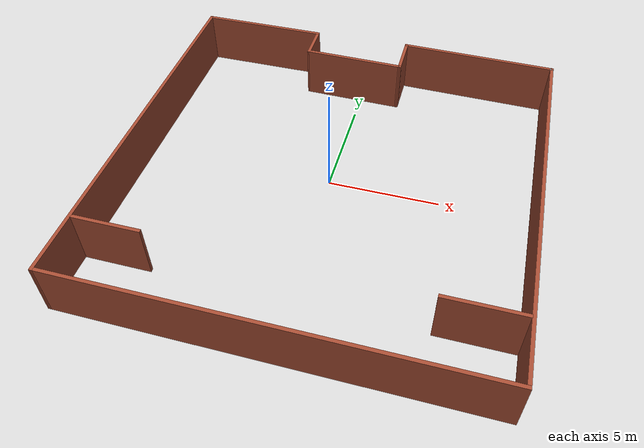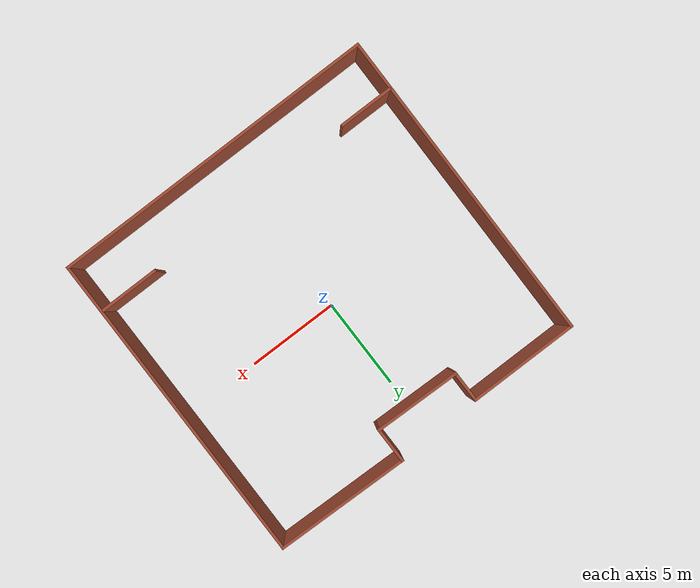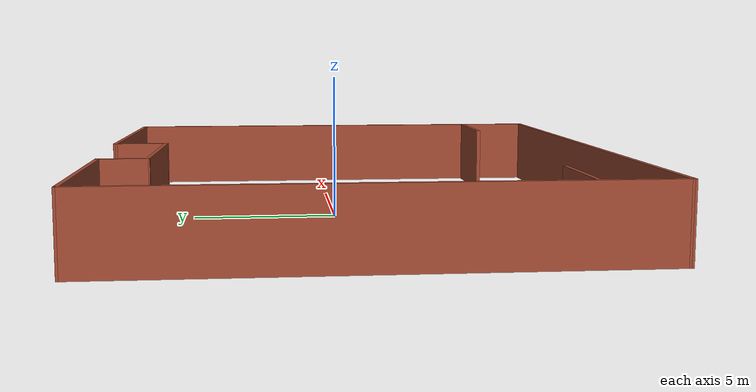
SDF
<?xml version='1.0'?>
<sdf version='1.6'>
  <model name='map_139'>
    <pose frame=''>0.179464 -0.623901 0 0 -0 0</pose>
    <link name='Wall_10'>
      <collision name='Wall_10_Collision'>
        <geometry>
          <box>
            <size>4.75 0.15 2.5</size>
          </box>
        </geometry>
        <pose frame=''>0 0 1.25 0 -0 0</pose>
      </collision>
      <visual name='Wall_10_Visual'>
        <pose frame=''>0 0 1.25 0 -0 0</pose>
        <geometry>
          <box>
            <size>4.75 0.15 2.5</size>
          </box>
        </geometry>
        <material>
          <script>
            <uri>file://media/materials/scripts/gazebo.material</uri>
            <name>Gazebo/Bricks</name>
          </script>
          <ambient>1 1 1 1</ambient>
        </material>
        <meta>
          <layer>0</layer>
        </meta>
      </visual>
      <pose frame=''>-0.608272 6.82439 0 0 -0 -0.020225</pose>
    </link>
    <link name='Wall_13'>
      <collision name='Wall_13_Collision'>
        <geometry>
          <box>
            <size>2 0.15 2.5</size>
          </box>
        </geometry>
        <pose frame=''>0 0 1.25 0 -0 0</pose>
      </collision>
      <visual name='Wall_13_Visual'>
        <pose frame=''>0 0 1.25 0 -0 0</pose>
        <geometry>
          <box>
            <size>2 0.15 2.5</size>
          </box>
        </geometry>
        <material>
          <script>
            <uri>file://media/materials/scripts/gazebo.material</uri>
            <name>Gazebo/Bricks</name>
          </script>
          <ambient>1 1 1 1</ambient>
        </material>
        <meta>
          <layer>0</layer>
        </meta>
      </visual>
      <pose frame=''>1.69173 7.70287 0 0 -0 1.5708</pose>
    </link>
    <link name='Wall_14'>
      <collision name='Wall_14_Collision'>
        <geometry>
          <box>
            <size>7.30172 0.15 2.5</size>
          </box>
        </geometry>
        <pose frame=''>0 0 1.25 0 -0 0</pose>
      </collision>
      <visual name='Wall_14_Visual'>
        <pose frame=''>0 0 1.25 0 -0 0</pose>
        <geometry>
          <box>
            <size>7.30172 0.15 2.5</size>
          </box>
        </geometry>
        <material>
          <script>
            <uri>file://media/materials/scripts/gazebo.material</uri>
            <name>Gazebo/Bricks</name>
          </script>
          <ambient>1 1 1 1</ambient>
        </material>
        <meta>
          <layer>0</layer>
        </meta>
      </visual>
      <pose frame=''>5.26673 8.54939 0 0 -0 -0.021948</pose>
    </link>
    <link name='Wall_15'>
      <collision name='Wall_15_Collision'>
        <geometry>
          <box>
            <size>0.16 0.15 2.5</size>
          </box>
        </geometry>
        <pose frame=''>0 0 1.25 0 -0 0</pose>
      </collision>
      <visual name='Wall_15_Visual'>
        <pose frame=''>0 0 1.25 0 -0 0</pose>
        <geometry>
          <box>
            <size>0.16 0.15 2.5</size>
          </box>
        </geometry>
        <material>
          <script>
            <uri>file://media/materials/scripts/gazebo.material</uri>
            <name>Gazebo/Grey</name>
          </script>
          <ambient>0 0 0 1</ambient>
        </material>
        <meta>
          <layer>0</layer>
        </meta>
      </visual>
      <pose frame=''>8.84673 8.47091 0 0 -0 0</pose>
    </link>
    <link name='Wall_16'>
      <collision name='Wall_16_Collision'>
        <geometry>
          <box>
            <size>3 0.15 2.5</size>
          </box>
        </geometry>
        <pose frame=''>0 0 1.25 0 -0 0</pose>
      </collision>
      <visual name='Wall_16_Visual'>
        <pose frame=''>0 0 1.25 0 -0 0</pose>
        <geometry>
          <box>
            <size>3 0.15 2.5</size>
          </box>
        </geometry>
        <material>
          <script>
            <uri>file://media/materials/scripts/gazebo.material</uri>
            <name>Gazebo/Bricks</name>
          </script>
          <ambient>1 1 1 1</ambient>
        </material>
        <meta>
          <layer>0</layer>
        </meta>
      </visual>
      <pose frame=''>-7.33327 -5.99135 0 0 -0 0</pose>
    </link>
    <link name='Wall_18'>
      <collision name='Wall_18_Collision'>
        <geometry>
          <box>
            <size>3.25 0.15 2.5</size>
          </box>
        </geometry>
        <pose frame=''>0 0 1.25 0 -0 0</pose>
      </collision>
      <visual name='Wall_18_Visual'>
        <pose frame=''>0 0 1.25 0 -0 0</pose>
        <geometry>
          <box>
            <size>3.25 0.15 2.5</size>
          </box>
        </geometry>
        <material>
          <script>
            <uri>file://media/materials/scripts/gazebo.material</uri>
            <name>Gazebo/Bricks</name>
          </script>
          <ambient>1 1 1 1</ambient>
        </material>
        <meta>
          <layer>0</layer>
        </meta>
      </visual>
      <pose frame=''>7.16762 -5.94483 0 0 -0 0</pose>
    </link>
    <link name='Wall_2'>
      <collision name='Wall_2_Collision'>
        <geometry>
          <box>
            <size>17.8431 0.15 2.5</size>
          </box>
        </geometry>
        <pose frame=''>0 0 1.25 0 -0 0</pose>
      </collision>
      <visual name='Wall_2_Visual'>
        <pose frame=''>0 0 1.25 0 -0 0</pose>
        <geometry>
          <box>
            <size>17.8431 0.15 2.5</size>
          </box>
        </geometry>
        <material>
          <script>
            <uri>file://media/materials/scripts/gazebo.material</uri>
            <name>Gazebo/Bricks</name>
          </script>
          <ambient>1 1 1 1</ambient>
        </material>
        <meta>
          <layer>0</layer>
        </meta>
      </visual>
      <pose frame=''>-0.004796 -8.62909 0 0 -0 0</pose>
    </link>
    <link name='Wall_3'>
      <collision name='Wall_3_Collision'>
        <geometry>
          <box>
            <size>17.25 0.15 2.5</size>
          </box>
        </geometry>
        <pose frame=''>0 0 1.25 0 -0 0</pose>
      </collision>
      <visual name='Wall_3_Visual'>
        <pose frame=''>0 0 1.25 0 -0 0</pose>
        <geometry>
          <box>
            <size>17.25 0.15 2.5</size>
          </box>
        </geometry>
        <material>
          <script>
            <uri>file://media/materials/scripts/gazebo.material</uri>
            <name>Gazebo/Bricks</name>
          </script>
          <ambient>1 1 1 1</ambient>
        </material>
        <meta>
          <layer>0</layer>
        </meta>
      </visual>
      <pose frame=''>8.84173 -0.079087 0 0 -0 1.5708</pose>
    </link>
    <link name='Wall_6'>
      <collision name='Wall_6_Collision'>
        <geometry>
          <box>
            <size>17.2503 0.15 2.5</size>
          </box>
        </geometry>
        <pose frame=''>0 0 1.25 0 -0 0</pose>
      </collision>
      <visual name='Wall_6_Visual'>
        <pose frame=''>0 0 1.25 0 -0 0</pose>
        <geometry>
          <box>
            <size>17.2503 0.15 2.5</size>
          </box>
        </geometry>
        <material>
          <script>
            <uri>file://media/materials/scripts/gazebo.material</uri>
            <name>Gazebo/Bricks</name>
          </script>
          <ambient>1 1 1 1</ambient>
        </material>
        <meta>
          <layer>0</layer>
        </meta>
      </visual>
      <pose frame=''>-8.8048 -0.079087 0 0 -0 -1.57624</pose>
    </link>
    <link name='Wall_8'>
      <collision name='Wall_8_Collision'>
        <geometry>
          <box>
            <size>6 0.15 2.5</size>
          </box>
        </geometry>
        <pose frame=''>0 0 1.25 0 -0 0</pose>
      </collision>
      <visual name='Wall_8_Visual'>
        <pose frame=''>0 0 1.25 0 -0 0</pose>
        <geometry>
          <box>
            <size>6 0.15 2.5</size>
          </box>
        </geometry>
        <material>
          <script>
            <uri>file://media/materials/scripts/gazebo.material</uri>
            <name>Gazebo/Bricks</name>
          </script>
          <ambient>1 1 1 1</ambient>
        </material>
        <meta>
          <layer>0</layer>
        </meta>
      </visual>
      <pose frame=''>-5.83327 8.47091 0 0 -0 0</pose>
    </link>
    <link name='Wall_9'>
      <collision name='Wall_9_Collision'>
        <geometry>
          <box>
            <size>1.75 0.15 2.5</size>
          </box>
        </geometry>
        <pose frame=''>0 0 1.25 0 -0 0</pose>
      </collision>
      <visual name='Wall_9_Visual'>
        <pose frame=''>0 0 1.25 0 -0 0</pose>
        <geometry>
          <box>
            <size>1.75 0.15 2.5</size>
          </box>
        </geometry>
        <material>
          <script>
            <uri>file://media/materials/scripts/gazebo.material</uri>
            <name>Gazebo/Bricks</name>
          </script>
          <ambient>1 1 1 1</ambient>
        </material>
        <meta>
          <layer>0</layer>
        </meta>
      </visual>
      <pose frame=''>-2.90827 7.67091 0 0 -0 -1.5708</pose>
    </link>
    <static>1</static>
  </model>
</sdf>
